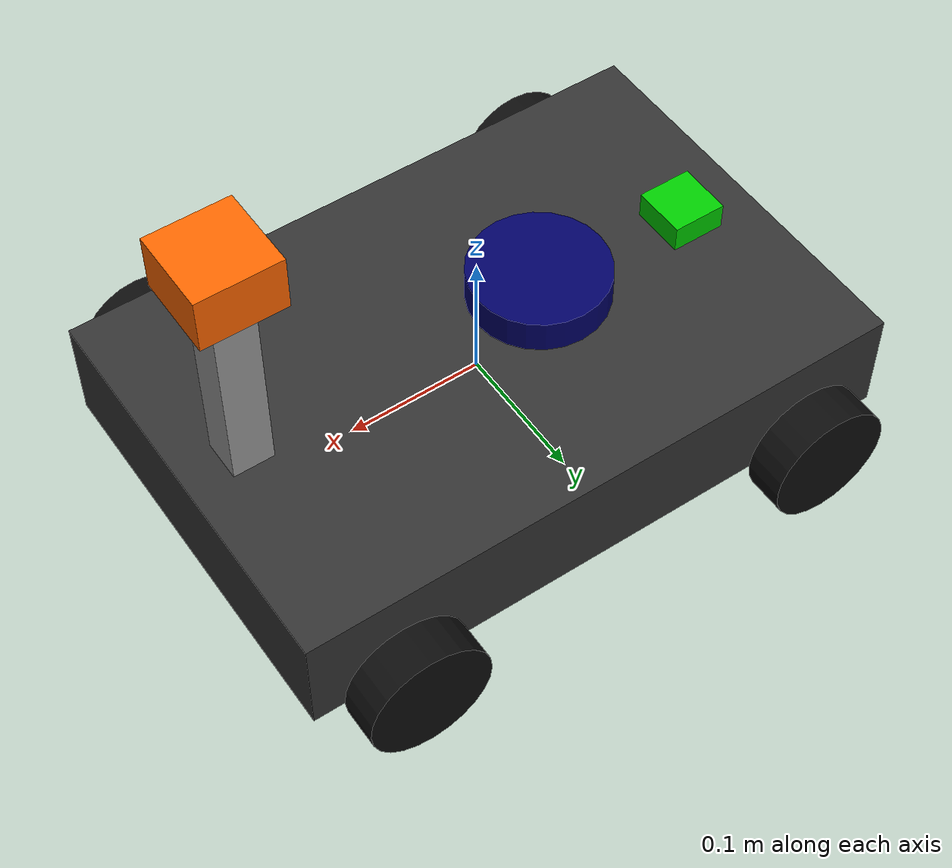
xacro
<?xml version="1.0"?>
<robot xmlns:xacro="http://www.ros.org/wiki/xacro" name="rescue_robot">

  <!-- ==================== PROPERTIES ==================== -->
  <xacro:property name="base_length" value="0.45"/>
  <xacro:property name="base_width" value="0.30"/>
  <xacro:property name="base_height" value="0.08"/>
  <xacro:property name="wheel_radius" value="0.045"/>
  <xacro:property name="wheel_width" value="0.03"/>
  <xacro:property name="wheel_x_offset" value="0.16"/>
  <xacro:property name="wheel_y_offset" value="0.17"/>
  <xacro:property name="wheel_z_offset" value="-0.03"/>

  <!-- ==================== BASE LINK ==================== -->
  <link name="base_link">
    <visual>
      <geometry>
        <box size="${base_length} ${base_width} ${base_height}"/>
      </geometry>
      <material name="dark_grey">
        <color rgba="0.2 0.2 0.2 1.0"/>
      </material>
    </visual>
    <collision>
      <geometry>
        <box size="${base_length} ${base_width} ${base_height}"/>
      </geometry>
    </collision>
    <inertial>
      <mass value="6.0"/>
      <inertia ixx="0.1" ixy="0.0" ixz="0.0"
               iyy="0.1" iyz="0.0" izz="0.1"/>
    </inertial>
  </link>

  <!-- ==================== FRONT LEFT WHEEL ==================== -->
  <link name="front_left_wheel">
    <visual>
      <geometry>
        <cylinder radius="${wheel_radius}" length="${wheel_width}"/>
      </geometry>
      <material name="black">
        <color rgba="0.05 0.05 0.05 1.0"/>
      </material>
    </visual>
    <collision>
      <geometry>
        <cylinder radius="${wheel_radius}" length="${wheel_width}"/>
      </geometry>
    </collision>
    <inertial>
      <mass value="0.4"/>
      <inertia ixx="0.01" ixy="0.0" ixz="0.0"
               iyy="0.01" iyz="0.0" izz="0.01"/>
    </inertial>
  </link>

  <joint name="front_left_wheel_joint" type="continuous">
    <parent link="base_link"/>
    <child link="front_left_wheel"/>
    <origin xyz="${wheel_x_offset} ${wheel_y_offset} ${wheel_z_offset}" rpy="-1.5708 0 0"/>
    <axis xyz="0 0 1"/>
  </joint>

  <!-- ==================== FRONT RIGHT WHEEL ==================== -->
  <link name="front_right_wheel">
    <visual>
      <geometry>
        <cylinder radius="${wheel_radius}" length="${wheel_width}"/>
      </geometry>
      <material name="black">
        <color rgba="0.05 0.05 0.05 1.0"/>
      </material>
    </visual>
    <collision>
      <geometry>
        <cylinder radius="${wheel_radius}" length="${wheel_width}"/>
      </geometry>
    </collision>
    <inertial>
      <mass value="0.4"/>
      <inertia ixx="0.01" ixy="0.0" ixz="0.0"
               iyy="0.01" iyz="0.0" izz="0.01"/>
    </inertial>
  </link>

  <joint name="front_right_wheel_joint" type="continuous">
    <parent link="base_link"/>
    <child link="front_right_wheel"/>
    <origin xyz="${wheel_x_offset} -${wheel_y_offset} ${wheel_z_offset}" rpy="-1.5708 0 0"/>
    <axis xyz="0 0 1"/>
  </joint>

  <!-- ==================== REAR LEFT WHEEL ==================== -->
  <link name="rear_left_wheel">
    <visual>
      <geometry>
        <cylinder radius="${wheel_radius}" length="${wheel_width}"/>
      </geometry>
      <material name="black">
        <color rgba="0.05 0.05 0.05 1.0"/>
      </material>
    </visual>
    <collision>
      <geometry>
        <cylinder radius="${wheel_radius}" length="${wheel_width}"/>
      </geometry>
    </collision>
    <inertial>
      <mass value="0.4"/>
      <inertia ixx="0.01" ixy="0.0" ixz="0.0"
               iyy="0.01" iyz="0.0" izz="0.01"/>
    </inertial>
  </link>

  <joint name="rear_left_wheel_joint" type="continuous">
    <parent link="base_link"/>
    <child link="rear_left_wheel"/>
    <origin xyz="-${wheel_x_offset} ${wheel_y_offset} ${wheel_z_offset}" rpy="-1.5708 0 0"/>
    <axis xyz="0 0 1"/>
  </joint>

  <!-- ==================== REAR RIGHT WHEEL ==================== -->
  <link name="rear_right_wheel">
    <visual>
      <geometry>
        <cylinder radius="${wheel_radius}" length="${wheel_width}"/>
      </geometry>
      <material name="black">
        <color rgba="0.05 0.05 0.05 1.0"/>
      </material>
    </visual>
    <collision>
      <geometry>
        <cylinder radius="${wheel_radius}" length="${wheel_width}"/>
      </geometry>
    </collision>
    <inertial>
      <mass value="0.4"/>
      <inertia ixx="0.01" ixy="0.0" ixz="0.0"
               iyy="0.01" iyz="0.0" izz="0.01"/>
    </inertial>
  </link>

  <joint name="rear_right_wheel_joint" type="continuous">
    <parent link="base_link"/>
    <child link="rear_right_wheel"/>
    <origin xyz="-${wheel_x_offset} -${wheel_y_offset} ${wheel_z_offset}" rpy="-1.5708 0 0"/>
    <axis xyz="0 0 1"/>
  </joint>

  <!-- ==================== CAMERA NECK ==================== -->
  <link name="camera_neck">
    <visual>
      <geometry>
        <box size="0.03 0.03 0.15"/>
      </geometry>
      <material name="light_grey">
        <color rgba="0.6 0.6 0.6 1.0"/>
      </material>
    </visual>
    <collision>
      <geometry>
        <box size="0.03 0.03 0.15"/>
      </geometry>
    </collision>
    <inertial>
      <mass value="0.1"/>
      <inertia ixx="0.001" ixy="0.0" ixz="0.0"
               iyy="0.001" iyz="0.0" izz="0.001"/>
    </inertial>
  </link>

  <joint name="camera_neck_joint" type="fixed">
    <parent link="base_link"/>
    <child link="camera_neck"/>
    <origin xyz="0.18 0.0 0.115" rpy="0 0 0"/>
  </joint>

  <!-- ==================== CAMERA LINK ==================== -->
  <link name="camera_link">
    <visual>
      <geometry>
        <box size="0.06 0.06 0.04"/>
      </geometry>
      <material name="orange">
        <color rgba="1.0 0.4 0.0 1.0"/>
      </material>
    </visual>
    <collision>
      <geometry>
        <box size="0.06 0.06 0.04"/>
      </geometry>
    </collision>
    <inertial>
      <mass value="0.05"/>
      <inertia ixx="0.001" ixy="0.0" ixz="0.0"
               iyy="0.001" iyz="0.0" izz="0.001"/>
    </inertial>
  </link>

  <joint name="camera_joint" type="fixed">
    <parent link="camera_neck"/>
    <child link="camera_link"/>
    <origin xyz="0.0 0.0 0.095" rpy="0 0 0"/>
  </joint>

  <!-- ==================== LIDAR LINK ==================== -->
  <link name="lidar_link">
    <visual>
      <geometry>
        <cylinder radius="0.05" length="0.025"/>
      </geometry>
      <material name="dark_blue">
        <color rgba="0.0 0.0 0.4 1.0"/>
      </material>
    </visual>
    <collision>
      <geometry>
        <cylinder radius="0.05" length="0.025"/>
      </geometry>
    </collision>
    <inertial>
      <mass value="0.1"/>
      <inertia ixx="0.001" ixy="0.0" ixz="0.0"
               iyy="0.001" iyz="0.0" izz="0.001"/>
    </inertial>
  </link>

  <joint name="lidar_joint" type="fixed">
    <parent link="base_link"/>
    <child link="lidar_link"/>
    <origin xyz="-0.05 0.0 0.055" rpy="0 0 0"/>
  </joint>

  <!-- ==================== IMU LINK ==================== -->
  <link name="imu_link">
    <visual>
      <geometry>
        <box size="0.04 0.04 0.02"/>
      </geometry>
      <material name="green">
        <color rgba="0.0 0.8 0.0 1.0"/>
      </material>
    </visual>
    <collision>
      <geometry>
        <box size="0.04 0.04 0.02"/>
      </geometry>
    </collision>
    <inertial>
      <mass value="0.05"/>
      <inertia ixx="0.001" ixy="0.0" ixz="0.0"
               iyy="0.001" iyz="0.0" izz="0.001"/>
    </inertial>
  </link>

  <joint name="imu_joint" type="fixed">
    <parent link="base_link"/>
    <child link="imu_link"/>
    <origin xyz="-0.17 0.0 0.05" rpy="0 0 0"/>
  </joint>

  <!-- ==================== GAZEBO PLUGINS ==================== -->

  <!-- Camera Plugin -->
  <gazebo reference="camera_link">
    <sensor name="camera" type="camera">
      <always_on>true</always_on>
      <update_rate>30</update_rate>
      <camera>
        <horizontal_fov>1.047</horizontal_fov>
        <image>
          <width>640</width>
          <height>480</height>
          <format>R8G8B8</format>
        </image>
        <clip>
          <near>0.1</near>
          <far>100</far>
        </clip>
      </camera>
      <topic>/camera/image_raw</topic>
    </sensor>
  </gazebo>

  <!-- LiDAR Plugin -->
  <gazebo reference="lidar_link">
    <sensor name="lidar" type="gpu_lidar">
      <always_on>true</always_on>
      <update_rate>10</update_rate>
      <lidar>
        <scan>
          <horizontal>
            <samples>360</samples>
            <resolution>1</resolution>
            <min_angle>-3.14159</min_angle>
            <max_angle>3.14159</max_angle>
          </horizontal>
        </scan>
        <range>
          <min>0.1</min>
          <max>20.0</max>
          <resolution>0.01</resolution>
        </range>
      </lidar>
      <topic>/scan</topic>
    </sensor>
  </gazebo>

  <!-- IMU Plugin -->
  <gazebo reference="imu_link">
    <sensor name="imu" type="imu">
      <always_on>true</always_on>
      <update_rate>100</update_rate>
      <topic>/imu</topic>
    </sensor>
  </gazebo>

  <!-- Differential Drive Plugin -->
  <gazebo>
    <plugin filename="gz-sim-diff-drive-system"
            name="gz::sim::systems::DiffDrive">
      <left_joint>front_left_wheel_joint</left_joint>
      <left_joint>rear_left_wheel_joint</left_joint>
      <right_joint>front_right_wheel_joint</right_joint>
      <right_joint>rear_right_wheel_joint</right_joint>
      <wheel_separation>0.34</wheel_separation>
      <wheel_radius>0.045</wheel_radius>
      <topic>/cmd_vel</topic>
      <odom_topic>/odom</odom_topic>
      <frame_id>odom</frame_id>
      <child_frame_id>base_link</child_frame_id>
    </plugin>
  </gazebo>

</robot>
